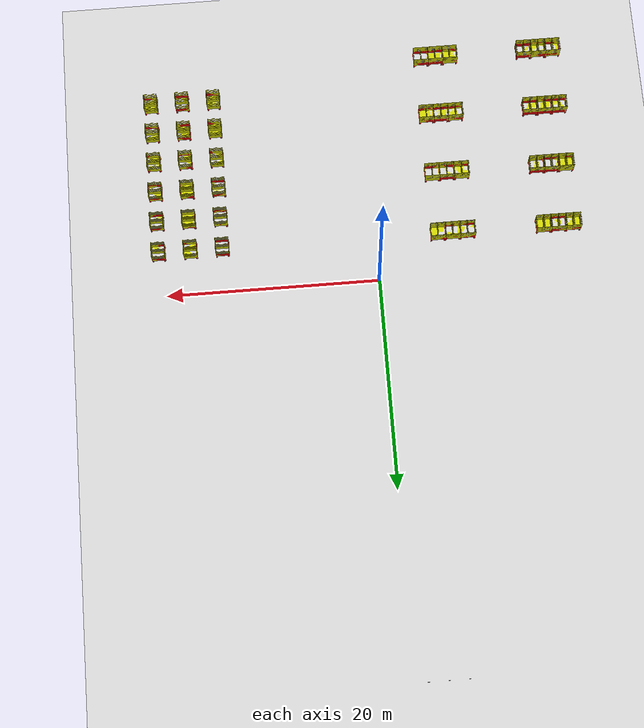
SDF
<sdf version="1.6">
 <world name="default">
  <light name="sun" type="directional">
   <pose>0 0 10 0 -0 0</pose>
   <diffuse>0.8 0.8 0.8 1</diffuse>
   <specular>0.2 0.2 0.2 1</specular>
   <attenuation>
    <range>1000</range>
    <constant>0.9</constant>
    <linear>0.01</linear>
    <quadratic>0.001</quadratic>
   </attenuation>
   <direction>-0.5 0.1 -0.9</direction>
  </light>
  <model name="ground_plane">
   <static>1</static>
   <link name="link">
    <collision name="collision">
     <geometry><plane><normal>0 0 1</normal><size>100 100</size></plane></geometry>
     <surface><friction><ode><mu>100</mu><mu2>50</mu2></ode></friction></surface>
    </collision>
    <visual name="visual">
     <cast_shadows>0</cast_shadows>
     <geometry><plane><normal>0 0 1</normal><size>100 100</size></plane></geometry>
     <material>
      <script><uri>file://media/materials/scripts/gazebo.material</uri><name>Gazebo/Grey</name></script>
     </material>
    </visual>
   </link>
  </model>
  <gravity>0 0 -9.8</gravity>
  <magnetic_field>6e-06 2.3e-05 -4.2e-05</magnetic_field>
  <atmosphere type="adiabatic"/>
  <physics name="default_physics" default="0" type="ode">
   <max_step_size>0.001</max_step_size>
   <real_time_factor>1</real_time_factor>
   <real_time_update_rate>1000</real_time_update_rate>
  </physics>
  <scene><ambient>0.4 0.4 0.4 1</ambient><background>0.7 0.7 0.7 1</background><shadows>1</shadows></scene>
  <audio><device>default</device></audio>
  <spherical_coordinates>
   <surface_model>EARTH_WGS84</surface_model>
   <latitude_deg>0</latitude_deg>
   <longitude_deg>0</longitude_deg>
   <elevation>0</elevation>
   <heading_deg>0</heading_deg>
  </spherical_coordinates>
  <model name="plot_factory_load">
   <static>1</static>
   <pose>14.5 -4 0.6 0 0 -1.57</pose>
   <link name="link">
    <collision name="collision">
     <geometry><mesh><uri>model://plot_factory_load/meshes/plotyuk.dae</uri></mesh></geometry>
    </collision>
    <visual name="visual">
     <geometry><mesh><uri>model://plot_factory_load/meshes/plotyuk.dae</uri></mesh></geometry>
    </visual>
   </link>
  </model>
  <model name="plot_factory_load_0">
   <static>1</static>
   <pose>17.5 -4 0.6 0 0 -1.57</pose>
   <link name="link">
    <collision name="collision">
     <geometry><mesh><uri>model://plot_factory_load/meshes/plotyuk.dae</uri></mesh></geometry>
    </collision>
    <visual name="visual">
     <geometry><mesh><uri>model://plot_factory_load/meshes/plotyuk.dae</uri></mesh></geometry>
    </visual>
   </link>
  </model>
  <model name="plot_factory_load_1">
   <static>1</static>
   <pose>20.5 -4 0.6 0 0 -1.57</pose>
   <link name="link">
    <collision name="collision">
     <geometry><mesh><uri>model://plot_factory_load/meshes/plotyuk.dae</uri></mesh></geometry>
    </collision>
    <visual name="visual">
     <geometry><mesh><uri>model://plot_factory_load/meshes/plotyuk.dae</uri></mesh></geometry>
    </visual>
   </link>
  </model>
  <model name="plot_factory_load_2">
   <static>1</static>
   <pose>14.5 -7 0.6 0 0 -1.57</pose>
   <link name="link">
    <collision name="collision">
     <geometry><mesh><uri>model://plot_factory_load/meshes/plotyuk.dae</uri></mesh></geometry>
    </collision>
    <visual name="visual">
     <geometry><mesh><uri>model://plot_factory_load/meshes/plotyuk.dae</uri></mesh></geometry>
    </visual>
   </link>
  </model>
  <model name="plot_factory_load_3">
   <static>1</static>
   <pose>17.5 -7 0.6 0 0 -1.57</pose>
   <link name="link">
    <collision name="collision">
     <geometry><mesh><uri>model://plot_factory_load/meshes/plotyuk.dae</uri></mesh></geometry>
    </collision>
    <visual name="visual">
     <geometry><mesh><uri>model://plot_factory_load/meshes/plotyuk.dae</uri></mesh></geometry>
    </visual>
   </link>
  </model>
  <model name="plot_factory_load_4">
   <static>1</static>
   <pose>20.5 -7 0.6 0 0 -1.57</pose>
   <link name="link">
    <collision name="collision">
     <geometry><mesh><uri>model://plot_factory_load/meshes/plotyuk.dae</uri></mesh></geometry>
    </collision>
    <visual name="visual">
     <geometry><mesh><uri>model://plot_factory_load/meshes/plotyuk.dae</uri></mesh></geometry>
    </visual>
   </link>
  </model>
  <model name="plot_factory_load_5">
   <static>1</static>
   <pose>14.5 -10 0.6 0 0 -1.57</pose>
   <link name="link">
    <collision name="collision">
     <geometry><mesh><uri>model://plot_factory_load/meshes/plotyuk.dae</uri></mesh></geometry>
    </collision>
    <visual name="visual">
     <geometry><mesh><uri>model://plot_factory_load/meshes/plotyuk.dae</uri></mesh></geometry>
    </visual>
   </link>
  </model>
  <model name="plot_factory_load_6">
   <static>1</static>
   <pose>17.5 -10 0.6 0 0 -1.57</pose>
   <link name="link">
    <collision name="collision">
     <geometry><mesh><uri>model://plot_factory_load/meshes/plotyuk.dae</uri></mesh></geometry>
    </collision>
    <visual name="visual">
     <geometry><mesh><uri>model://plot_factory_load/meshes/plotyuk.dae</uri></mesh></geometry>
    </visual>
   </link>
  </model>
  <model name="plot_factory_load_7">
   <static>1</static>
   <pose>20.5 -10 0.6 0 0 -1.57</pose>
   <link name="link">
    <collision name="collision">
     <geometry><mesh><uri>model://plot_factory_load/meshes/plotyuk.dae</uri></mesh></geometry>
    </collision>
    <visual name="visual">
     <geometry><mesh><uri>model://plot_factory_load/meshes/plotyuk.dae</uri></mesh></geometry>
    </visual>
   </link>
  </model>
  <model name="plot_factory_load_8">
   <static>1</static>
   <pose>14.5 -13 0.6 0 0 -1.57</pose>
   <link name="link">
    <collision name="collision">
     <geometry><mesh><uri>model://plot_factory_load/meshes/plotyuk.dae</uri></mesh></geometry>
    </collision>
    <visual name="visual">
     <geometry><mesh><uri>model://plot_factory_load/meshes/plotyuk.dae</uri></mesh></geometry>
    </visual>
   </link>
  </model>
  <model name="plot_factory_load_9">
   <static>1</static>
   <pose>17.5 -13 0.6 0 0 -1.57</pose>
   <link name="link">
    <collision name="collision">
     <geometry><mesh><uri>model://plot_factory_load/meshes/plotyuk.dae</uri></mesh></geometry>
    </collision>
    <visual name="visual">
     <geometry><mesh><uri>model://plot_factory_load/meshes/plotyuk.dae</uri></mesh></geometry>
    </visual>
   </link>
  </model>
  <model name="plot_factory_load_10">
   <static>1</static>
   <pose>20.5 -13 0.6 0 0 -1.57</pose>
   <link name="link">
    <collision name="collision">
     <geometry><mesh><uri>model://plot_factory_load/meshes/plotyuk.dae</uri></mesh></geometry>
    </collision>
    <visual name="visual">
     <geometry><mesh><uri>model://plot_factory_load/meshes/plotyuk.dae</uri></mesh></geometry>
    </visual>
   </link>
  </model>
  <model name="plot_factory_load_11">
   <static>1</static>
   <pose>14.5 -16 0.6 0 0 -1.57</pose>
   <link name="link">
    <collision name="collision">
     <geometry><mesh><uri>model://plot_factory_load/meshes/plotyuk.dae</uri></mesh></geometry>
    </collision>
    <visual name="visual">
     <geometry><mesh><uri>model://plot_factory_load/meshes/plotyuk.dae</uri></mesh></geometry>
    </visual>
   </link>
  </model>
  <model name="plot_factory_load_12">
   <static>1</static>
   <pose>17.5 -16 0.6 0 0 -1.57</pose>
   <link name="link">
    <collision name="collision">
     <geometry><mesh><uri>model://plot_factory_load/meshes/plotyuk.dae</uri></mesh></geometry>
    </collision>
    <visual name="visual">
     <geometry><mesh><uri>model://plot_factory_load/meshes/plotyuk.dae</uri></mesh></geometry>
    </visual>
   </link>
  </model>
  <model name="plot_factory_load_13">
   <static>1</static>
   <pose>20.5 -16 0.6 0 0 -1.57</pose>
   <link name="link">
    <collision name="collision">
     <geometry><mesh><uri>model://plot_factory_load/meshes/plotyuk.dae</uri></mesh></geometry>
    </collision>
    <visual name="visual">
     <geometry><mesh><uri>model://plot_factory_load/meshes/plotyuk.dae</uri></mesh></geometry>
    </visual>
   </link>
  </model>
  <model name="plot_factory_load_14">
   <static>1</static>
   <pose>14.5 -19 0.6 0 0 -1.57</pose>
   <link name="link">
    <collision name="collision">
     <geometry><mesh><uri>model://plot_factory_load/meshes/plotyuk.dae</uri></mesh></geometry>
    </collision>
    <visual name="visual">
     <geometry><mesh><uri>model://plot_factory_load/meshes/plotyuk.dae</uri></mesh></geometry>
    </visual>
   </link>
  </model>
  <model name="plot_factory_load_15">
   <static>1</static>
   <pose>17.5 -19 0.6 0 0 -1.57</pose>
   <link name="link">
    <collision name="collision">
     <geometry><mesh><uri>model://plot_factory_load/meshes/plotyuk.dae</uri></mesh></geometry>
    </collision>
    <visual name="visual">
     <geometry><mesh><uri>model://plot_factory_load/meshes/plotyuk.dae</uri></mesh></geometry>
    </visual>
   </link>
  </model>
  <model name="plot_factory_load_16">
   <static>1</static>
   <pose>20.5 -19 0.6 0 0 -1.57</pose>
   <link name="link">
    <collision name="collision">
     <geometry><mesh><uri>model://plot_factory_load/meshes/plotyuk.dae</uri></mesh></geometry>
    </collision>
    <visual name="visual">
     <geometry><mesh><uri>model://plot_factory_load/meshes/plotyuk.dae</uri></mesh></geometry>
    </visual>
   </link>
  </model>
  <model name="plot_factory_station1">
   <static>1</static>
   <pose>0 -0.001 0.4 0 -0 0</pose>
   <link name="link">
    <collision name="collision">
     <geometry><mesh><uri>model://plot_factory_station1/meshes/plotqr.dae</uri></mesh></geometry>
    </collision>
    <visual name="visual">
     <geometry><mesh><uri>model://plot_factory_station1/meshes/plotqr.dae</uri></mesh></geometry>
     <material>
      <script>
       <name>Station1</name>
       <uri>model://plot_factory_station1/materials/scripts</uri>
       <uri>model://plot_factory_station1/materials/textures</uri>
      </script>
     </material>
    </visual>
   </link>
  </model>
  <model name="plot_factory_station2">
   <static>1</static>
   <pose>1.8 0 0.4 0 -0 0</pose>
   <link name="link">
    <collision name="collision">
     <geometry><mesh><uri>model://plot_factory_station2/meshes/plotqr.dae</uri></mesh></geometry>
    </collision>
    <visual name="visual">
     <geometry><mesh><uri>model://plot_factory_station2/meshes/plotqr.dae</uri></mesh></geometry>
     <material>
      <script>
       <name>Station2</name>
       <uri>model://plot_factory_station2/materials/scripts</uri>
       <uri>model://plot_factory_station2/materials/textures</uri>
      </script>
     </material>
    </visual>
   </link>
  </model>
  <model name="plot_factory_station3">
   <static>1</static>
   <pose>3.6 0 0.4 0 -0 0</pose>
   <link name="link">
    <collision name="collision">
     <geometry><mesh><uri>model://plot_factory_station3/meshes/plotqr.dae</uri></mesh></geometry>
    </collision>
    <visual name="visual">
     <geometry><mesh><uri>model://plot_factory_station3/meshes/plotqr.dae</uri></mesh></geometry>
     <material>
      <script>
       <name>Station3</name>
       <uri>model://plot_factory_station3/materials/scripts</uri>
       <uri>model://plot_factory_station3/materials/textures</uri>
      </script>
     </material>
    </visual>
   </link>
  </model>
  <model name="plot_factory_load_17">
   <static>1</static>
   <pose>-5.82 -21.9 0.6 0 0 -3.14</pose>
   <link name="link">
    <collision name="collision">
     <geometry><mesh><uri>model://plot_factory_load/meshes/plotyuk.dae</uri></mesh></geometry>
    </collision>
    <visual name="visual">
     <geometry><mesh><uri>model://plot_factory_load/meshes/plotyuk.dae</uri></mesh></geometry>
    </visual>
   </link>
  </model>
  <model name="plot_factory_load_18">
   <static>1</static>
   <pose>-7.22 -21.9 0.6 0 -0 0</pose>
   <link name="link">
    <collision name="collision">
     <geometry><mesh><uri>model://plot_factory_load/meshes/plotyuk.dae</uri></mesh></geometry>
    </collision>
    <visual name="visual">
     <geometry><mesh><uri>model://plot_factory_load/meshes/plotyuk.dae</uri></mesh></geometry>
    </visual>
   </link>
  </model>
  <model name="plot_factory_load_19">
   <static>1</static>
   <pose>-8.62 -21.9 0.6 0 -0 0</pose>
   <link name="link">
    <collision name="collision">
     <geometry><mesh><uri>model://plot_factory_load/meshes/plotyuk.dae</uri></mesh></geometry>
    </collision>
    <visual name="visual">
     <geometry><mesh><uri>model://plot_factory_load/meshes/plotyuk.dae</uri></mesh></geometry>
    </visual>
   </link>
  </model>
  <model name="plot_factory_load_20">
   <static>1</static>
   <pose>-5.82 -15.9 0.6 0 0 -3.14</pose>
   <link name="link">
    <collision name="collision">
     <geometry><mesh><uri>model://plot_factory_load/meshes/plotyuk.dae</uri></mesh></geometry>
    </collision>
    <visual name="visual">
     <geometry><mesh><uri>model://plot_factory_load/meshes/plotyuk.dae</uri></mesh></geometry>
    </visual>
   </link>
  </model>
  <model name="plot_factory_load_21">
   <static>1</static>
   <pose>-7.22 -15.9 0.6 0 0 -3.14</pose>
   <link name="link">
    <collision name="collision">
     <geometry><mesh><uri>model://plot_factory_load/meshes/plotyuk.dae</uri></mesh></geometry>
    </collision>
    <visual name="visual">
     <geometry><mesh><uri>model://plot_factory_load/meshes/plotyuk.dae</uri></mesh></geometry>
    </visual>
   </link>
  </model>
  <model name="plot_factory_load_22">
   <static>1</static>
   <pose>-8.62 -15.9 0.6 0 0 -3.14</pose>
   <link name="link">
    <collision name="collision">
     <geometry><mesh><uri>model://plot_factory_load/meshes/plotyuk.dae</uri></mesh></geometry>
    </collision>
    <visual name="visual">
     <geometry><mesh><uri>model://plot_factory_load/meshes/plotyuk.dae</uri></mesh></geometry>
    </visual>
   </link>
  </model>
  <model name="plot_factory_load_23">
   <static>1</static>
   <pose>-5.82 -9.9 0.6 0 0 -3.14</pose>
   <link name="link">
    <collision name="collision">
     <geometry><mesh><uri>model://plot_factory_load/meshes/plotyuk.dae</uri></mesh></geometry>
    </collision>
    <visual name="visual">
     <geometry><mesh><uri>model://plot_factory_load/meshes/plotyuk.dae</uri></mesh></geometry>
    </visual>
   </link>
  </model>
  <model name="plot_factory_load_24">
   <static>1</static>
   <pose>-7.22 -9.9 0.6 0 0 -3.14</pose>
   <link name="link">
    <collision name="collision">
     <geometry><mesh><uri>model://plot_factory_load/meshes/plotyuk.dae</uri></mesh></geometry>
    </collision>
    <visual name="visual">
     <geometry><mesh><uri>model://plot_factory_load/meshes/plotyuk.dae</uri></mesh></geometry>
    </visual>
   </link>
  </model>
  <model name="plot_factory_load_25">
   <static>1</static>
   <pose>-8.62 -9.9 0.6 0 0 -3.14</pose>
   <link name="link">
    <collision name="collision">
     <geometry><mesh><uri>model://plot_factory_load/meshes/plotyuk.dae</uri></mesh></geometry>
    </collision>
    <visual name="visual">
     <geometry><mesh><uri>model://plot_factory_load/meshes/plotyuk.dae</uri></mesh></geometry>
    </visual>
   </link>
  </model>
  <model name="plot_factory_load_26">
   <static>1</static>
   <pose>-5.82 -3.9 0.6 0 -0 0</pose>
   <link name="link">
    <collision name="collision">
     <geometry><mesh><uri>model://plot_factory_load/meshes/plotyuk.dae</uri></mesh></geometry>
    </collision>
    <visual name="visual">
     <geometry><mesh><uri>model://plot_factory_load/meshes/plotyuk.dae</uri></mesh></geometry>
    </visual>
   </link>
  </model>
  <model name="plot_factory_load_27">
   <static>1</static>
   <pose>-7.22 -3.9 0.6 0 -0 0</pose>
   <link name="link">
    <collision name="collision">
     <geometry><mesh><uri>model://plot_factory_load/meshes/plotyuk.dae</uri></mesh></geometry>
    </collision>
    <visual name="visual">
     <geometry><mesh><uri>model://plot_factory_load/meshes/plotyuk.dae</uri></mesh></geometry>
    </visual>
   </link>
  </model>
  <model name="plot_factory_load_28">
   <static>1</static>
   <pose>-8.62 -3.9 0.6 0 -0 0</pose>
   <link name="link">
    <collision name="collision">
     <geometry><mesh><uri>model://plot_factory_load/meshes/plotyuk.dae</uri></mesh></geometry>
    </collision>
    <visual name="visual">
     <geometry><mesh><uri>model://plot_factory_load/meshes/plotyuk.dae</uri></mesh></geometry>
    </visual>
   </link>
  </model>
  <model name="plot_factory_load_29">
   <static>1</static>
   <pose>-15.82 -21.9 0.6 0 0 -3.14</pose>
   <link name="link">
    <collision name="collision">
     <geometry><mesh><uri>model://plot_factory_load/meshes/plotyuk.dae</uri></mesh></geometry>
    </collision>
    <visual name="visual">
     <geometry><mesh><uri>model://plot_factory_load/meshes/plotyuk.dae</uri></mesh></geometry>
    </visual>
   </link>
  </model>
  <model name="plot_factory_load_30">
   <static>1</static>
   <pose>-17.22 -21.9 0.6 0 0 -3.14</pose>
   <link name="link">
    <collision name="collision">
     <geometry><mesh><uri>model://plot_factory_load/meshes/plotyuk.dae</uri></mesh></geometry>
    </collision>
    <visual name="visual">
     <geometry><mesh><uri>model://plot_factory_load/meshes/plotyuk.dae</uri></mesh></geometry>
    </visual>
   </link>
  </model>
  <model name="plot_factory_load_31">
   <static>1</static>
   <pose>-18.62 -21.9 0.6 0 0 -3.14</pose>
   <link name="link">
    <collision name="collision">
     <geometry><mesh><uri>model://plot_factory_load/meshes/plotyuk.dae</uri></mesh></geometry>
    </collision>
    <visual name="visual">
     <geometry><mesh><uri>model://plot_factory_load/meshes/plotyuk.dae</uri></mesh></geometry>
    </visual>
   </link>
  </model>
  <model name="plot_factory_load_32">
   <static>1</static>
   <pose>-15.82 -15.9 0.6 0 0 -3.14</pose>
   <link name="link">
    <collision name="collision">
     <geometry><mesh><uri>model://plot_factory_load/meshes/plotyuk.dae</uri></mesh></geometry>
    </collision>
    <visual name="visual">
     <geometry><mesh><uri>model://plot_factory_load/meshes/plotyuk.dae</uri></mesh></geometry>
    </visual>
   </link>
  </model>
  <model name="plot_factory_load_33">
   <static>1</static>
   <pose>-17.22 -15.9006 0.6 0 0 -3.14</pose>
   <link name="link">
    <collision name="collision">
     <geometry><mesh><uri>model://plot_factory_load/meshes/plotyuk.dae</uri></mesh></geometry>
    </collision>
    <visual name="visual">
     <geometry><mesh><uri>model://plot_factory_load/meshes/plotyuk.dae</uri></mesh></geometry>
    </visual>
   </link>
  </model>
  <model name="plot_factory_load_34">
   <static>1</static>
   <pose>-18.62 -15.9 0.6 0 0 -3.14</pose>
   <link name="link">
    <collision name="collision">
     <geometry><mesh><uri>model://plot_factory_load/meshes/plotyuk.dae</uri></mesh></geometry>
    </collision>
    <visual name="visual">
     <geometry><mesh><uri>model://plot_factory_load/meshes/plotyuk.dae</uri></mesh></geometry>
    </visual>
   </link>
  </model>
  <model name="plot_factory_load_35">
   <static>1</static>
   <pose>-15.82 -9.9 0.6 0 0 -3.14</pose>
   <link name="link">
    <collision name="collision">
     <geometry><mesh><uri>model://plot_factory_load/meshes/plotyuk.dae</uri></mesh></geometry>
    </collision>
    <visual name="visual">
     <geometry><mesh><uri>model://plot_factory_load/meshes/plotyuk.dae</uri></mesh></geometry>
    </visual>
   </link>
  </model>
  <model name="plot_factory_load_36">
   <static>1</static>
   <pose>-17.22 -9.9 0.6 0 -0 3.14</pose>
   <link name="link">
    <collision name="collision">
     <geometry><mesh><uri>model://plot_factory_load/meshes/plotyuk.dae</uri></mesh></geometry>
    </collision>
    <visual name="visual">
     <geometry><mesh><uri>model://plot_factory_load/meshes/plotyuk.dae</uri></mesh></geometry>
    </visual>
   </link>
  </model>
  <model name="plot_factory_load_37">
   <static>1</static>
   <pose>-18.62 -9.9 0.6 0 -0 3.14</pose>
   <link name="link">
    <collision name="collision">
     <geometry><mesh><uri>model://plot_factory_load/meshes/plotyuk.dae</uri></mesh></geometry>
    </collision>
    <visual name="visual">
     <geometry><mesh><uri>model://plot_factory_load/meshes/plotyuk.dae</uri></mesh></geometry>
    </visual>
   </link>
  </model>
  <model name="plot_factory_load_38">
   <static>1</static>
   <pose>-15.82 -3.9 0.6 0 0 -3.14</pose>
   <link name="link">
    <collision name="collision">
     <geometry><mesh><uri>model://plot_factory_load/meshes/plotyuk.dae</uri></mesh></geometry>
    </collision>
    <visual name="visual">
     <geometry><mesh><uri>model://plot_factory_load/meshes/plotyuk.dae</uri></mesh></geometry>
    </visual>
   </link>
  </model>
  <model name="plot_factory_load_39">
   <static>1</static>
   <pose>-17.22 -3.9 0.6 0 0 -3.14</pose>
   <link name="link">
    <collision name="collision">
     <geometry><mesh><uri>model://plot_factory_load/meshes/plotyuk.dae</uri></mesh></geometry>
    </collision>
    <visual name="visual">
     <geometry><mesh><uri>model://plot_factory_load/meshes/plotyuk.dae</uri></mesh></geometry>
    </visual>
   </link>
  </model>
  <model name="plot_factory_load_40">
   <static>1</static>
   <pose>-18.62 -3.9 0.6 0 0 -3.14</pose>
   <link name="link">
    <collision name="collision">
     <geometry><mesh><uri>model://plot_factory_load/meshes/plotyuk.dae</uri></mesh></geometry>
    </collision>
    <visual name="visual">
     <geometry><mesh><uri>model://plot_factory_load/meshes/plotyuk.dae</uri></mesh></geometry>
    </visual>
   </link>
  </model>
 </world>
</sdf>
